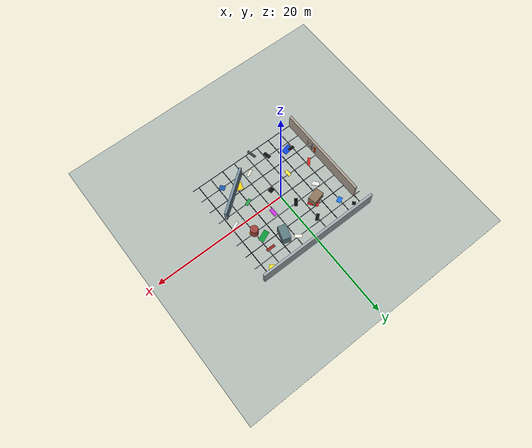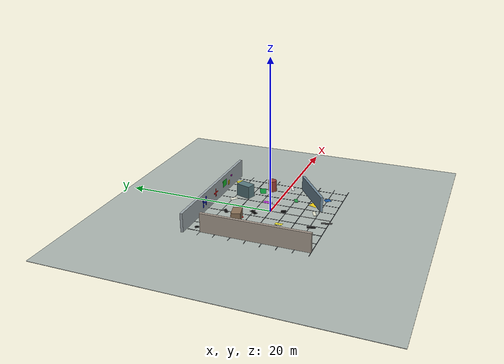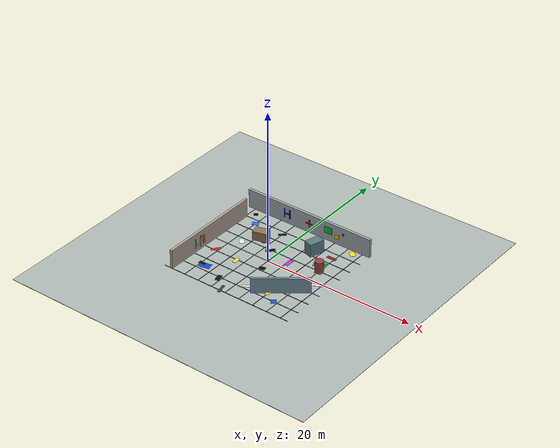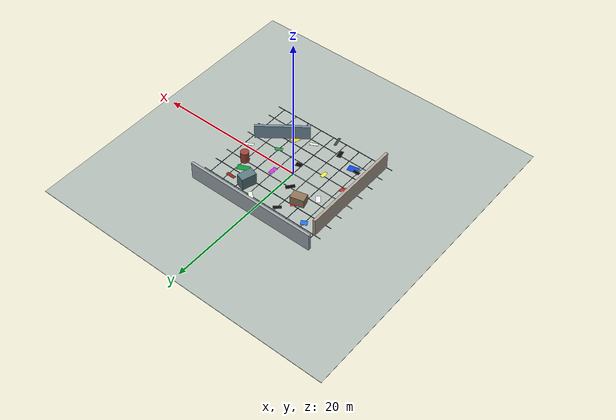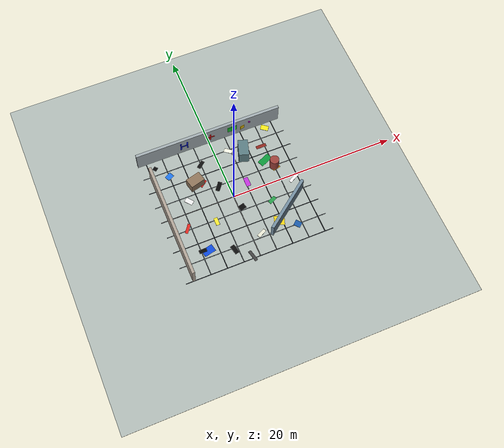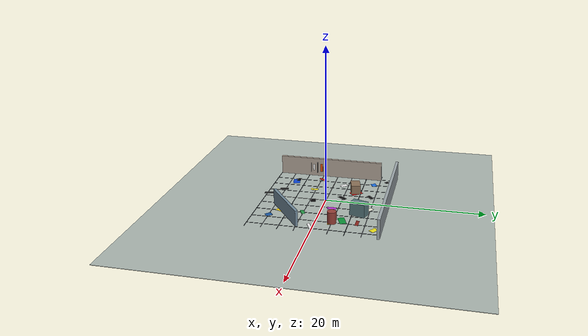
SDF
<sdf version="1.10">
 <world name="simple_apm_rgbd_visual_textured">
  <physics name="apm_1ms_physics" type="ignored">
   <max_step_size>0.001</max_step_size>
   <real_time_factor>1.0</real_time_factor>
  </physics>
  <plugin filename="gz-sim-physics-system" name="gz::sim::systems::Physics"/>
  <plugin filename="gz-sim-sensors-system" name="gz::sim::systems::Sensors">
   <render_engine>ogre2</render_engine>
  </plugin>
  <plugin filename="gz-sim-user-commands-system" name="gz::sim::systems::UserCommands"/>
  <plugin filename="gz-sim-scene-broadcaster-system" name="gz::sim::systems::SceneBroadcaster"/>
  <plugin filename="gz-sim-imu-system" name="gz::sim::systems::Imu"/>
  <plugin filename="gz-sim-navsat-system" name="gz::sim::systems::NavSat"/>
  <scene>
   <ambient>0.55 0.55 0.55 1</ambient>
   <background>0.72 0.78 0.86 1</background>
   <grid>false</grid>
   <shadows>true</shadows>
  </scene>
  <spherical_coordinates>
   <latitude_deg>-35.363262</latitude_deg>
   <longitude_deg>149.165237</longitude_deg>
   <elevation>584</elevation>
   <heading_deg>0</heading_deg>
   <surface_model>EARTH_WGS84</surface_model>
  </spherical_coordinates>
  <light name="sun" type="directional">
   <pose>0 0 20 0 0 0</pose>
   <direction>-0.45 0.25 -0.86</direction>
   <diffuse>0.95 0.92 0.86 1</diffuse>
   <specular>0.35 0.35 0.32 1</specular>
  </light>
  <model name="textured_floor">
   <static>true</static>
   <pose>0 0 -0.025 0 0 0</pose>
   <link name="floor_link">
    <collision name="floor_collision"><geometry><box><size>42 42 0.05</size></box></geometry></collision>
    <visual name="floor_visual">
     <geometry><box><size>42 42 0.05</size></box></geometry>
     <material>
      <ambient>0.68 0.72 0.70 1</ambient>
      <diffuse>0.68 0.72 0.70 1</diffuse>
      <specular>0.08 0.08 0.08 1</specular>
     </material>
    </visual>
   </link>
  </model>
  <model name="visible_floor_pattern">
   <static>true</static>
   <link name="pattern_link">
    <visual name="x_grid_-8">
     <pose>-8 0 0.012 0 0 0</pose>
     <geometry><box><size>0.08 16 0.012</size></box></geometry>
     <material><ambient>0.08 0.10 0.12 1</ambient><diffuse>0.08 0.10 0.12 1</diffuse></material>
    </visual>
    <visual name="x_grid_-6">
     <pose>-6 0 0.012 0 0 0</pose>
     <geometry><box><size>0.08 16 0.012</size></box></geometry>
     <material><ambient>0.28 0.30 0.32 1</ambient><diffuse>0.28 0.30 0.32 1</diffuse></material>
    </visual>
    <visual name="x_grid_-4">
     <pose>-4 0 0.012 0 0 0</pose>
     <geometry><box><size>0.08 16 0.012</size></box></geometry>
     <material><ambient>0.08 0.10 0.12 1</ambient><diffuse>0.08 0.10 0.12 1</diffuse></material>
    </visual>
    <visual name="x_grid_-2">
     <pose>-2 0 0.012 0 0 0</pose>
     <geometry><box><size>0.08 16 0.012</size></box></geometry>
     <material><ambient>0.28 0.30 0.32 1</ambient><diffuse>0.28 0.30 0.32 1</diffuse></material>
    </visual>
    <visual name="x_grid_0">
     <pose>0 0 0.012 0 0 0</pose>
     <geometry><box><size>0.10 16 0.012</size></box></geometry>
     <material><ambient>0.02 0.02 0.02 1</ambient><diffuse>0.02 0.02 0.02 1</diffuse></material>
    </visual>
    <visual name="x_grid_2">
     <pose>2 0 0.012 0 0 0</pose>
     <geometry><box><size>0.08 16 0.012</size></box></geometry>
     <material><ambient>0.28 0.30 0.32 1</ambient><diffuse>0.28 0.30 0.32 1</diffuse></material>
    </visual>
    <visual name="x_grid_4">
     <pose>4 0 0.012 0 0 0</pose>
     <geometry><box><size>0.08 16 0.012</size></box></geometry>
     <material><ambient>0.08 0.10 0.12 1</ambient><diffuse>0.08 0.10 0.12 1</diffuse></material>
    </visual>
    <visual name="x_grid_6">
     <pose>6 0 0.012 0 0 0</pose>
     <geometry><box><size>0.08 16 0.012</size></box></geometry>
     <material><ambient>0.28 0.30 0.32 1</ambient><diffuse>0.28 0.30 0.32 1</diffuse></material>
    </visual>
    <visual name="x_grid_8">
     <pose>8 0 0.012 0 0 0</pose>
     <geometry><box><size>0.08 16 0.012</size></box></geometry>
     <material><ambient>0.08 0.10 0.12 1</ambient><diffuse>0.08 0.10 0.12 1</diffuse></material>
    </visual>
    <visual name="y_grid_-8">
     <pose>0 -8 0.014 0 0 0</pose>
     <geometry><box><size>18 0.08 0.012</size></box></geometry>
     <material><ambient>0.08 0.10 0.12 1</ambient><diffuse>0.08 0.10 0.12 1</diffuse></material>
    </visual>
    <visual name="y_grid_-6">
     <pose>0 -6 0.014 0 0 0</pose>
     <geometry><box><size>18 0.08 0.012</size></box></geometry>
     <material><ambient>0.30 0.32 0.34 1</ambient><diffuse>0.30 0.32 0.34 1</diffuse></material>
    </visual>
    <visual name="y_grid_-4">
     <pose>0 -4 0.014 0 0 0</pose>
     <geometry><box><size>18 0.08 0.012</size></box></geometry>
     <material><ambient>0.08 0.10 0.12 1</ambient><diffuse>0.08 0.10 0.12 1</diffuse></material>
    </visual>
    <visual name="y_grid_-2">
     <pose>0 -2 0.014 0 0 0</pose>
     <geometry><box><size>18 0.08 0.012</size></box></geometry>
     <material><ambient>0.30 0.32 0.34 1</ambient><diffuse>0.30 0.32 0.34 1</diffuse></material>
    </visual>
    <visual name="y_grid_0">
     <pose>0 0 0.014 0 0 0</pose>
     <geometry><box><size>18 0.10 0.012</size></box></geometry>
     <material><ambient>0.02 0.02 0.02 1</ambient><diffuse>0.02 0.02 0.02 1</diffuse></material>
    </visual>
    <visual name="y_grid_2">
     <pose>0 2 0.014 0 0 0</pose>
     <geometry><box><size>18 0.08 0.012</size></box></geometry>
     <material><ambient>0.30 0.32 0.34 1</ambient><diffuse>0.30 0.32 0.34 1</diffuse></material>
    </visual>
    <visual name="y_grid_4">
     <pose>0 4 0.014 0 0 0</pose>
     <geometry><box><size>18 0.08 0.012</size></box></geometry>
     <material><ambient>0.08 0.10 0.12 1</ambient><diffuse>0.08 0.10 0.12 1</diffuse></material>
    </visual>
    <visual name="y_grid_6">
     <pose>0 6 0.014 0 0 0</pose>
     <geometry><box><size>18 0.08 0.012</size></box></geometry>
     <material><ambient>0.30 0.32 0.34 1</ambient><diffuse>0.30 0.32 0.34 1</diffuse></material>
    </visual>
    <visual name="y_grid_8">
     <pose>0 8 0.014 0 0 0</pose>
     <geometry><box><size>18 0.08 0.012</size></box></geometry>
     <material><ambient>0.08 0.10 0.12 1</ambient><diffuse>0.08 0.10 0.12 1</diffuse></material>
    </visual>
    <visual name="blue_patch">
     <pose>-5.2 -5.2 0.022 0 0 0.22</pose>
     <geometry><box><size>1.4 0.9 0.014</size></box></geometry>
     <material><ambient>0.05 0.28 0.85 1</ambient><diffuse>0.05 0.28 0.85 1</diffuse></material>
    </visual>
    <visual name="yellow_patch">
     <pose>3.7 -4.8 0.022 0 0 -0.32</pose>
     <geometry><box><size>1.2 1.1 0.014</size></box></geometry>
     <material><ambient>0.95 0.82 0.08 1</ambient><diffuse>0.95 0.82 0.08 1</diffuse></material>
    </visual>
    <visual name="red_patch">
     <pose>-3.0 3.4 0.022 0 0 0.65</pose>
     <geometry><box><size>1.0 1.5 0.014</size></box></geometry>
     <material><ambient>0.82 0.10 0.08 1</ambient><diffuse>0.82 0.10 0.08 1</diffuse></material>
    </visual>
    <visual name="green_patch">
     <pose>5.3 3.1 0.022 0 0 0.4</pose>
     <geometry><box><size>1.6 0.8 0.014</size></box></geometry>
     <material><ambient>0.05 0.58 0.22 1</ambient><diffuse>0.05 0.58 0.22 1</diffuse></material>
    </visual>
   </link>
  </model>
  <model name="walls_and_obstacles">
   <static>true</static>
   <link name="link">
    <collision name="north_wall">
     <pose>0 8 1.25 0 0 0</pose>
     <geometry><box><size>18 0.35 2.5</size></box></geometry>
    </collision>
    <visual name="north_wall_v">
     <pose>0 8 1.25 0 0 0</pose>
     <geometry><box><size>18 0.35 2.5</size></box></geometry>
     <material><diffuse>0.62 0.66 0.68 1</diffuse></material>
    </visual>
    <collision name="west_wall">
     <pose>-8 -1 1.25 0 0 0</pose>
     <geometry><box><size>0.35 14 2.5</size></box></geometry>
    </collision>
    <visual name="west_wall_v">
     <pose>-8 -1 1.25 0 0 0</pose>
     <geometry><box><size>0.35 14 2.5</size></box></geometry>
     <material><diffuse>0.68 0.63 0.58 1</diffuse></material>
    </visual>
    <collision name="short_wall">
     <pose>5 -4 1.0 0 0 0.65</pose>
     <geometry><box><size>7 0.35 2.0</size></box></geometry>
    </collision>
    <visual name="short_wall_v">
     <pose>5 -4 1.0 0 0 0.65</pose>
     <geometry><box><size>7 0.35 2.0</size></box></geometry>
     <material><diffuse>0.45 0.55 0.62 1</diffuse></material>
    </visual>
    <collision name="box_1">
     <pose>-3.5 3.2 0.6 0 0 0.25</pose>
     <geometry><box><size>1.8 1.2 1.2</size></box></geometry>
    </collision>
    <visual name="box_1_v">
     <pose>-3.5 3.2 0.6 0 0 0.25</pose>
     <geometry><box><size>1.8 1.2 1.2</size></box></geometry>
     <material><diffuse>0.55 0.45 0.35 1</diffuse></material>
    </visual>
    <collision name="box_2">
     <pose>3.2 4.8 0.85 0 0 -0.3</pose>
     <geometry><box><size>1.2 2.0 1.7</size></box></geometry>
    </collision>
    <visual name="box_2_v">
     <pose>3.2 4.8 0.85 0 0 -0.3</pose>
     <geometry><box><size>1.2 2.0 1.7</size></box></geometry>
     <material><diffuse>0.35 0.48 0.5 1</diffuse></material>
    </visual>
    <collision name="cylinder">
     <pose>6 2 0.75 0 0 0</pose>
     <geometry><cylinder><radius>0.55</radius><length>1.5</length></cylinder></geometry>
    </collision>
    <visual name="cylinder_v">
     <pose>6 2 0.75 0 0 0</pose>
     <geometry><cylinder><radius>0.55</radius><length>1.5</length></cylinder></geometry>
     <material><diffuse>0.6 0.25 0.22 1</diffuse></material>
    </visual>
   </link>
  </model>
  <model name="flow_floor_markers">
   <static>true</static>
   <link name="markers_link">
    <visual name="marker_0">
     <pose>-5.80 -5.00 0.035 0 0 0.000</pose>
     <geometry><box><size>0.90 0.45 0.025</size></box></geometry>
     <material><ambient>0.02 0.02 0.02 1.0</ambient><diffuse>0.02 0.02 0.02 1.0</diffuse></material>
    </visual>
    <visual name="marker_1">
     <pose>-2.40 -6.20 0.035 0 0 0.230</pose>
     <geometry><box><size>0.55 1.10 0.025</size></box></geometry>
     <material><ambient>0.05 0.05 0.05 1.0</ambient><diffuse>0.05 0.05 0.05 1.0</diffuse></material>
    </visual>
    <visual name="marker_2">
     <pose>1.20 -5.50 0.035 0 0 0.460</pose>
     <geometry><box><size>1.10 0.40 0.025</size></box></geometry>
     <material><ambient>0.90 0.90 0.82 1.0</ambient><diffuse>0.90 0.90 0.82 1.0</diffuse></material>
    </visual>
    <visual name="marker_3">
     <pose>5.50 -6.00 0.035 0 0 0.690</pose>
     <geometry><box><size>0.70 0.80 0.025</size></box></geometry>
     <material><ambient>0.10 0.35 0.65 1.0</ambient><diffuse>0.10 0.35 0.65 1.0</diffuse></material>
    </visual>
    <visual name="marker_4">
     <pose>-6.40 -1.80 0.035 0 0 0.920</pose>
     <geometry><box><size>1.20 0.35 0.025</size></box></geometry>
     <material><ambient>0.86 0.15 0.12 1.0</ambient><diffuse>0.86 0.15 0.12 1.0</diffuse></material>
    </visual>
    <visual name="marker_5">
     <pose>-3.00 -2.20 0.035 0 0 0.000</pose>
     <geometry><box><size>0.45 0.95 0.025</size></box></geometry>
     <material><ambient>0.95 0.90 0.20 1.0</ambient><diffuse>0.95 0.90 0.20 1.0</diffuse></material>
    </visual>
    <visual name="marker_6">
     <pose>0.40 -1.60 0.035 0 0 0.230</pose>
     <geometry><box><size>0.80 0.65 0.025</size></box></geometry>
     <material><ambient>0.03 0.03 0.03 1.0</ambient><diffuse>0.03 0.03 0.03 1.0</diffuse></material>
    </visual>
    <visual name="marker_7">
     <pose>4.00 -2.10 0.035 0 0 0.460</pose>
     <geometry><box><size>1.00 0.45 0.025</size></box></geometry>
     <material><ambient>0.15 0.60 0.28 1.0</ambient><diffuse>0.15 0.60 0.28 1.0</diffuse></material>
    </visual>
    <visual name="marker_8">
     <pose>-5.00 1.40 0.035 0 0 0.690</pose>
     <geometry><box><size>0.60 1.00 0.025</size></box></geometry>
     <material><ambient>0.92 0.92 0.92 1.0</ambient><diffuse>0.92 0.92 0.92 1.0</diffuse></material>
    </visual>
    <visual name="marker_9">
     <pose>-1.10 1.90 0.035 0 0 0.920</pose>
     <geometry><box><size>1.20 0.50 0.025</size></box></geometry>
     <material><ambient>0.02 0.02 0.02 1.0</ambient><diffuse>0.02 0.02 0.02 1.0</diffuse></material>
    </visual>
    <visual name="marker_10">
     <pose>2.20 1.20 0.035 0 0 0.000</pose>
     <geometry><box><size>0.55 1.15 0.025</size></box></geometry>
     <material><ambient>0.75 0.20 0.85 1.0</ambient><diffuse>0.75 0.20 0.85 1.0</diffuse></material>
    </visual>
    <visual name="marker_11">
     <pose>6.10 1.70 0.035 0 0 0.230</pose>
     <geometry><box><size>0.95 0.50 0.025</size></box></geometry>
     <material><ambient>0.85 0.55 0.08 1.0</ambient><diffuse>0.85 0.55 0.08 1.0</diffuse></material>
    </visual>
    <visual name="marker_12">
     <pose>-6.00 5.30 0.035 0 0 0.460</pose>
     <geometry><box><size>0.85 0.65 0.025</size></box></geometry>
     <material><ambient>0.12 0.45 0.90 1.0</ambient><diffuse>0.12 0.45 0.90 1.0</diffuse></material>
    </visual>
    <visual name="marker_13">
     <pose>-2.00 5.40 0.035 0 0 0.690</pose>
     <geometry><box><size>1.05 0.45 0.025</size></box></geometry>
     <material><ambient>0.05 0.05 0.05 1.0</ambient><diffuse>0.05 0.05 0.05 1.0</diffuse></material>
    </visual>
    <visual name="marker_14">
     <pose>1.70 5.90 0.035 0 0 0.920</pose>
     <geometry><box><size>0.50 1.00 0.025</size></box></geometry>
     <material><ambient>0.95 0.95 0.88 1.0</ambient><diffuse>0.95 0.95 0.88 1.0</diffuse></material>
    </visual>
    <visual name="marker_15">
     <pose>5.60 5.00 0.035 0 0 0.000</pose>
     <geometry><box><size>1.25 0.40 0.025</size></box></geometry>
     <material><ambient>0.55 0.15 0.12 1.0</ambient><diffuse>0.55 0.15 0.12 1.0</diffuse></material>
    </visual>
    <visual name="marker_16">
     <pose>-0.80 -7.70 0.035 0 0 0.230</pose>
     <geometry><box><size>0.35 1.40 0.025</size></box></geometry>
     <material><ambient>0.25 0.25 0.25 1.0</ambient><diffuse>0.25 0.25 0.25 1.0</diffuse></material>
    </visual>
    <visual name="marker_17">
     <pose>7.50 -0.40 0.035 0 0 0.460</pose>
     <geometry><box><size>1.40 0.35 0.025</size></box></geometry>
     <material><ambient>0.93 0.93 0.93 1.0</ambient><diffuse>0.93 0.93 0.93 1.0</diffuse></material>
    </visual>
    <visual name="marker_18">
     <pose>-7.20 6.90 0.035 0 0 0.690</pose>
     <geometry><box><size>0.50 0.50 0.025</size></box></geometry>
     <material><ambient>0.02 0.02 0.02 1.0</ambient><diffuse>0.02 0.02 0.02 1.0</diffuse></material>
    </visual>
    <visual name="marker_19">
     <pose>7.00 7.20 0.035 0 0 0.920</pose>
     <geometry><box><size>0.65 0.95 0.025</size></box></geometry>
     <material><ambient>0.95 0.90 0.10 1.0</ambient><diffuse>0.95 0.90 0.10 1.0</diffuse></material>
    </visual>
   </link>
  </model>
  <model name="visual_slam_wall_landmarks">
   <static>true</static>
   <link name="north_wall_symbols">
    <visual name="letter_h_left">
     <pose>-3.5 7.80 1.35 0 0 0</pose>
     <geometry><box><size>0.16 0.04 1.25</size></box></geometry>
     <material><diffuse>0.05 0.12 0.85 1</diffuse></material>
    </visual>
    <visual name="letter_h_right">
     <pose>-2.7 7.80 1.35 0 0 0</pose>
     <geometry><box><size>0.16 0.04 1.25</size></box></geometry>
     <material><diffuse>0.05 0.12 0.85 1</diffuse></material>
    </visual>
    <visual name="letter_h_cross">
     <pose>-3.1 7.78 1.35 0 0 0</pose>
     <geometry><box><size>0.80 0.05 0.16</size></box></geometry>
     <material><diffuse>0.05 0.12 0.85 1</diffuse></material>
    </visual>
    <visual name="plus_horizontal">
     <pose>0.2 7.78 1.25 0 0 0</pose>
     <geometry><box><size>1.05 0.05 0.16</size></box></geometry>
     <material><diffuse>0.90 0.08 0.08 1</diffuse></material>
    </visual>
    <visual name="plus_vertical">
     <pose>0.2 7.80 1.25 0 0 0</pose>
     <geometry><box><size>0.16 0.04 1.05</size></box></geometry>
     <material><diffuse>0.90 0.08 0.08 1</diffuse></material>
    </visual>
    <visual name="scale_large">
     <pose>3.0 7.78 1.45 0 0 0</pose>
     <geometry><box><size>1.15 0.05 0.85</size></box></geometry>
     <material><diffuse>0.08 0.72 0.18 1</diffuse></material>
    </visual>
    <visual name="scale_medium">
     <pose>4.3 7.77 1.05 0 0 0.18</pose>
     <geometry><box><size>0.55 0.06 0.55</size></box></geometry>
     <material><diffuse>0.95 0.78 0.05 1</diffuse></material>
    </visual>
    <visual name="scale_small">
     <pose>5.2 7.76 1.70 0 0 -0.25</pose>
     <geometry><box><size>0.24 0.07 0.24</size></box></geometry>
     <material><diffuse>0.70 0.05 0.72 1</diffuse></material>
    </visual>
   </link>
   <link name="west_wall_barcode">
    <visual name="stripe_1">
     <pose>-7.80 -3.8 1.20 0 0 0</pose>
     <geometry><box><size>0.04 0.10 1.35</size></box></geometry>
     <material><diffuse>0.02 0.02 0.02 1</diffuse></material>
    </visual>
    <visual name="stripe_2">
     <pose>-7.79 -3.4 1.20 0 0 0</pose>
     <geometry><box><size>0.05 0.22 0.90</size></box></geometry>
     <material><diffuse>0.92 0.92 0.92 1</diffuse></material>
    </visual>
    <visual name="stripe_3">
     <pose>-7.78 -2.9 1.20 0 0 0</pose>
     <geometry><box><size>0.06 0.13 1.55</size></box></geometry>
     <material><diffuse>0.04 0.04 0.04 1</diffuse></material>
    </visual>
    <visual name="stripe_4">
     <pose>-7.77 -2.3 1.20 0 0 0</pose>
     <geometry><box><size>0.07 0.28 1.15</size></box></geometry>
     <material><diffuse>0.90 0.32 0.06 1</diffuse></material>
    </visual>
   </link>
  </model>
 </world>
</sdf>
